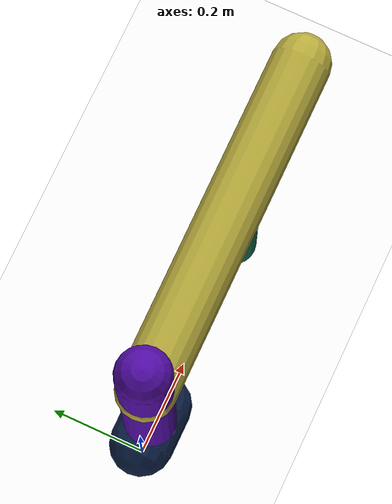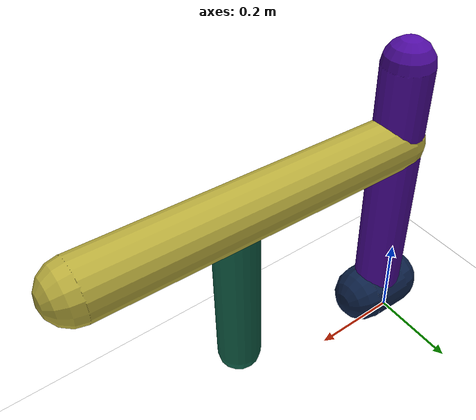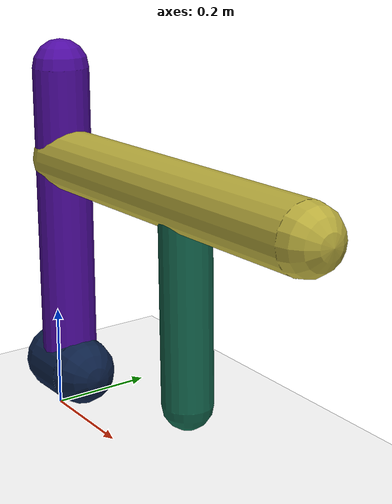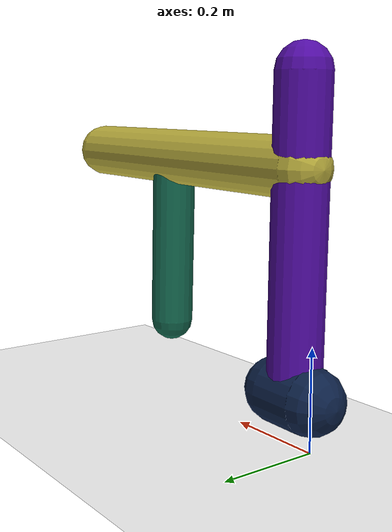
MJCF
<mujoco model="morphology">
  <option timestep="0.01"/>
  <default>
    <default class="/"/>
  </default>
  <asset>
    <texture name="texplane" type="2d" builtin="checker" rgb1="0.1 0.2 0.3" rgb2="0.2 0.3 0.4" width="300" height="300"/>
    <material name="MatPlane" class="/" texture="texplane" texrepeat="20 20" specular="1" shininess="1" reflectance="0.5"/>
  </asset>
  <worldbody>
    <light name="//unnamed_light_0" class="/" directional="true" pos="0 0 1.5" dir="0 0 -1.3" cutoff="1e+02" exponent="1" diffuse="1 1 1" specular="0.1 0.1 0.1"/>
    <geom name="ground" class="/" type="plane" size="15 15 0.5" material="MatPlane" rgba="1 1 1 1"/>
    <body name="body" pos="0 0 0.1">
      <geom name="geom0" class="/" type="capsule" contype="1" conaffinity="1" condim="3" size="0.065" rgba="0.049 0.13 0.28 1" friction="0.4 0.1 0.1" fromto="0 0 0 0.088 0 0.0013"/>
      <body name="body1" pos="0.045 0 0.00065">
        <geom name="geom1" class="/" type="capsule" contype="1" conaffinity="1" condim="3" size="0.053" rgba="0.32 0.047 0.65 1" friction="0.4 0.1 0.1" fromto="0 0 0 -0.0094 0 0.59"/>
        <body name="body2" pos="-0.0066 0 0.42">
          <geom name="geom2" class="/" type="capsule" contype="1" conaffinity="1" condim="3" size="0.058" rgba="0.73 0.68 0.24 1" friction="0.4 0.1 0.1" fromto="0 0 0 0.68 0 0.016"/>
          <body name="body3" pos="0.39 0 0.0092">
            <geom name="geom3" class="/" type="capsule" contype="1" conaffinity="1" condim="3" size="0.045" rgba="0.075 0.41 0.31 1" friction="0.4 0.1 0.1" fromto="0 0 0 0.012 0 -0.36"/>
            <joint name="joint3" class="/" type="hinge" axis="0 1 0" limited="true" stiffness="20" range="-36 36" armature="0.1" damping="2"/>
          </body>
          <joint name="joint2" class="/" type="hinge" axis="0 1 0" limited="true" stiffness="20" range="-62 62" armature="0.1" damping="2"/>
        </body>
        <joint name="joint1" class="/" type="hinge" axis="0 1 0" limited="true" stiffness="20" range="-39 39" armature="0.1" damping="2"/>
      </body>
      <joint name="rootx" class="/" type="slide" axis="1 0 0" limited="false" stiffness="0" armature="0" damping="0"/>
      <joint name="rootz" class="/" type="slide" axis="0 0 1" limited="false" stiffness="0" armature="0" damping="0"/>
      <joint name="rooty" class="/" type="hinge" axis="0 1 0" limited="false" stiffness="0" armature="0" damping="0"/>
    </body>
  </worldbody>
  <actuator>
    <motor name="motor3" class="/" ctrllimited="true" ctrlrange="-1 1" gear="1.5e+02" joint="joint3"/>
    <motor name="motor2" class="/" ctrllimited="true" ctrlrange="-1 1" gear="1.3e+02" joint="joint2"/>
    <motor name="motor1" class="/" ctrllimited="true" ctrlrange="-1 1" gear="1.3e+02" joint="joint1"/>
  </actuator>
  <sensor>
    <subtreelinvel name="velocity" body="body"/>
  </sensor>
</mujoco>
